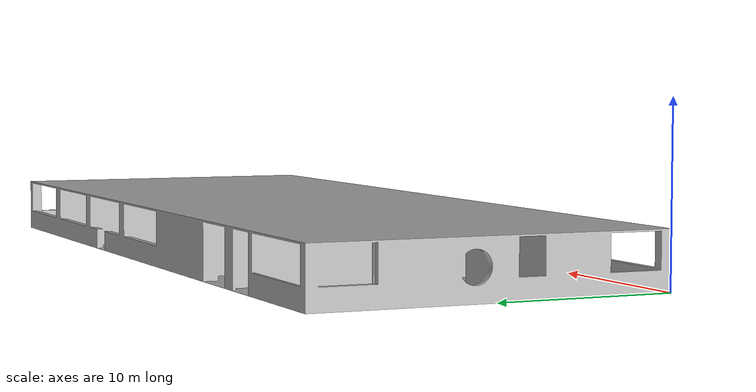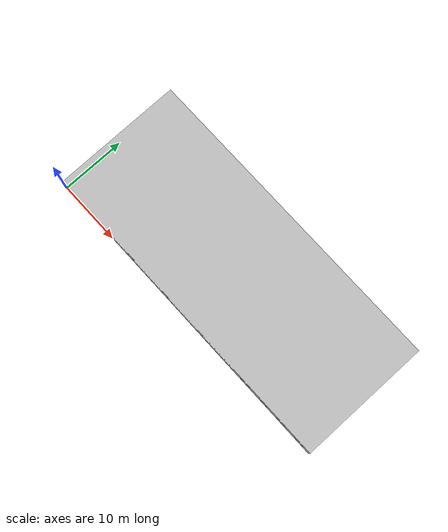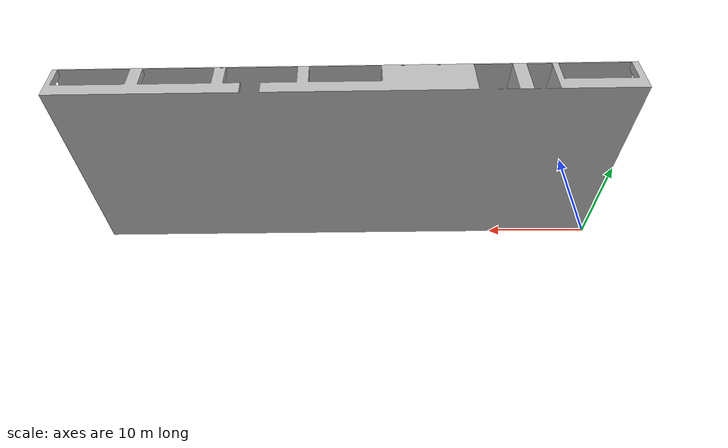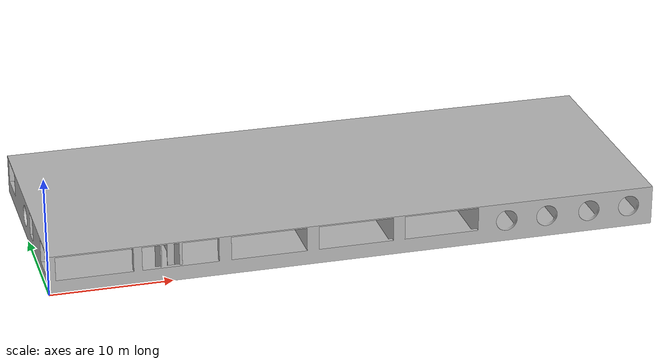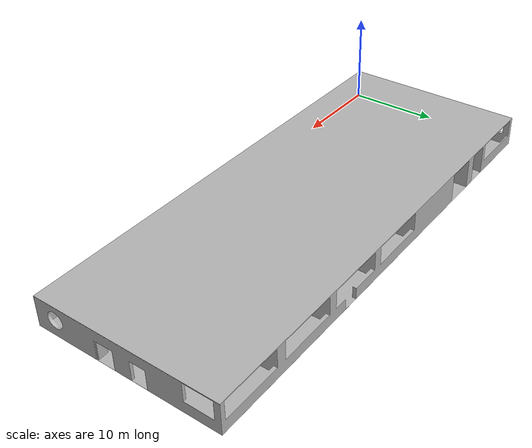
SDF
<?xml version="1.0"?>

<sdf version="1.6">
  <model name='walls'>
    <static>true</static>
    <link name="body">

        <visual name="visual">
          <geometry>
            <mesh><uri>model://models/walls_roof/meshes/roof_UAMT.dae</uri></mesh>
          </geometry>
        </visual>

        <collision name="collision">
          <geometry>
            <mesh><uri>model://models/walls_roof/meshes/roof_UAMT.dae</uri></mesh>
          </geometry>
        </collision>

    </link>
  </model>
</sdf>
